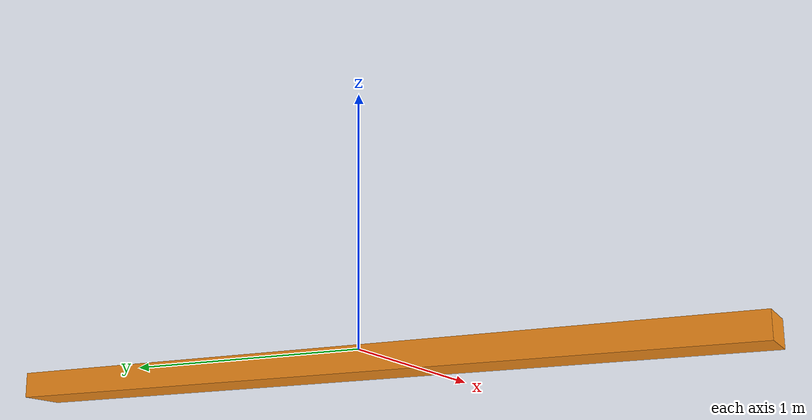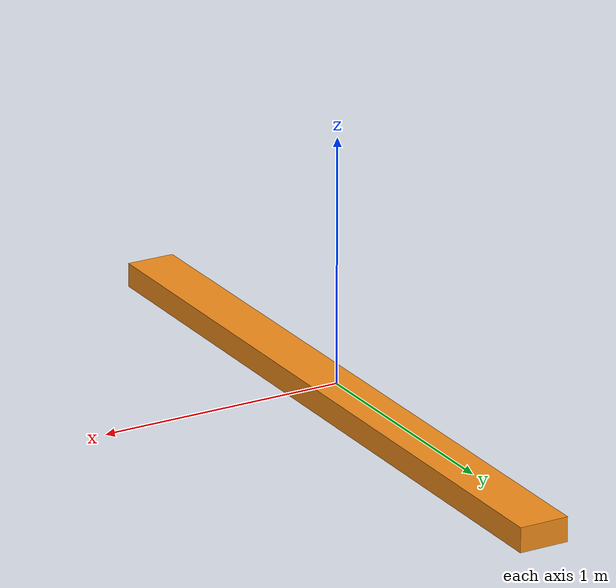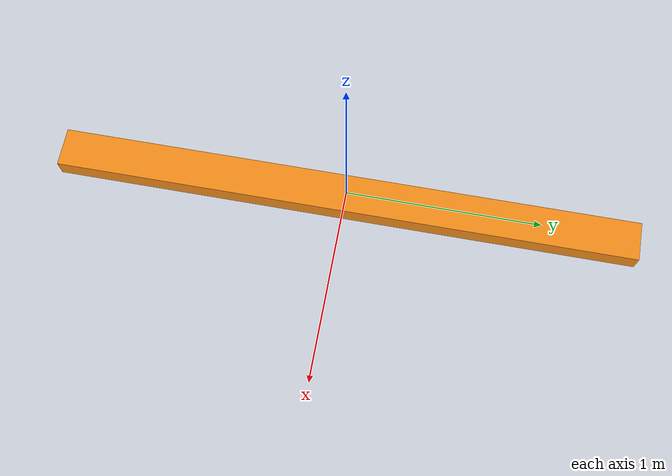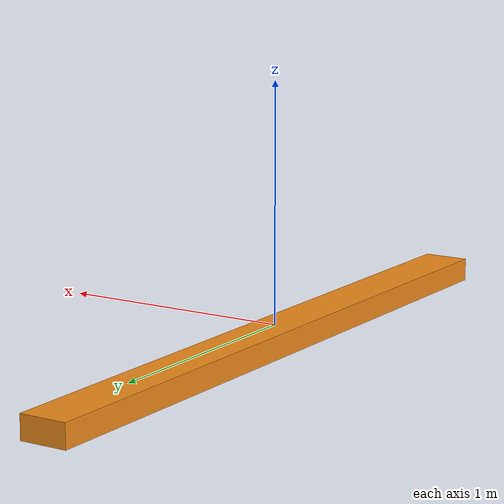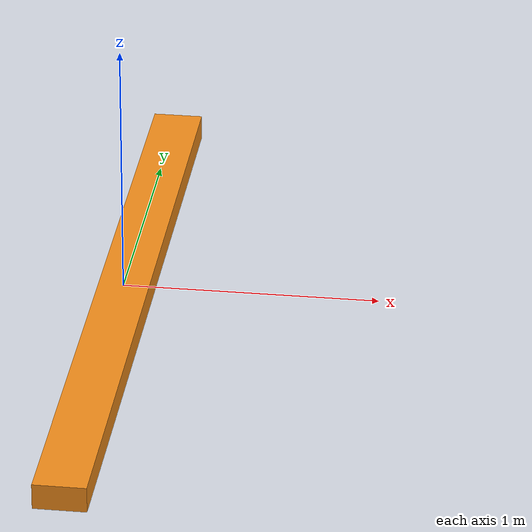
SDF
<?xml version='1.0'?>
<sdf version='1.5'>
  <model name='stepping_stone'>
    <pose frame=''>0 0 -0.05 0 0 0</pose>
    <link name='Stairs_2'>
      <visual name='Stairs_2_Visual_0'>
        <pose frame=''>0 0 0 0 0 0</pose>
        <geometry>
          <box>
            <size>0.2 3 .1</size>
          </box>
        </geometry>
        <material>
          <script>
            <uri>file://media/materials/scripts/gazebo.material</uri>
            <name>Gazebo/Orange</name>
          </script>
          <ambient>1 1 1 1</ambient>
        </material>
        <meta>
          <layer>0</layer>
        </meta>
      </visual>
      <collision name='Stairs_2_Collision_0'>
        <geometry>
          <plane>
            <normal> 0 0 1 </normal>
            <size> 10 10 </size>
          </plane>

        </geometry>
        <pose frame=''>0 0 0.05 0 0 0</pose>
        <surface>
          <contact>
            <collide_bitmask> 0xffff </collide_bitmask>
          </contact>
          <friction>
            <torsional>
              <use_patch_radius> true </use_patch_radius>
              <patch_radius> 0.03 </patch_radius>
              <coefficient> 5 </coefficient>
            </torsional>
            <ode>
              <mu> 100 </mu>
              <mu2> 50 </mu2>
            </ode>
          </friction>
        </surface>
      </collision>
    </link>
    <static>1</static>
  </model>
</sdf>
